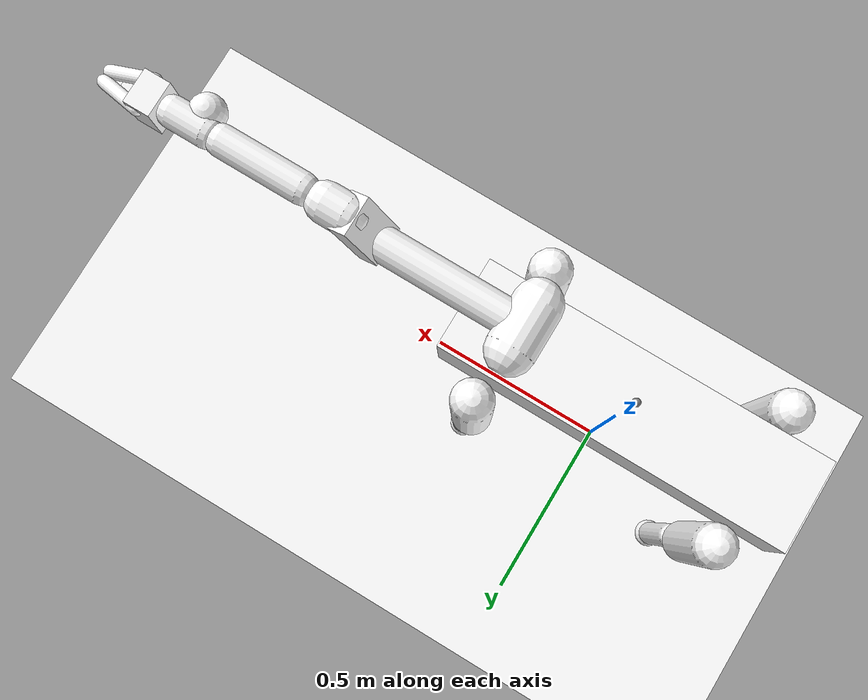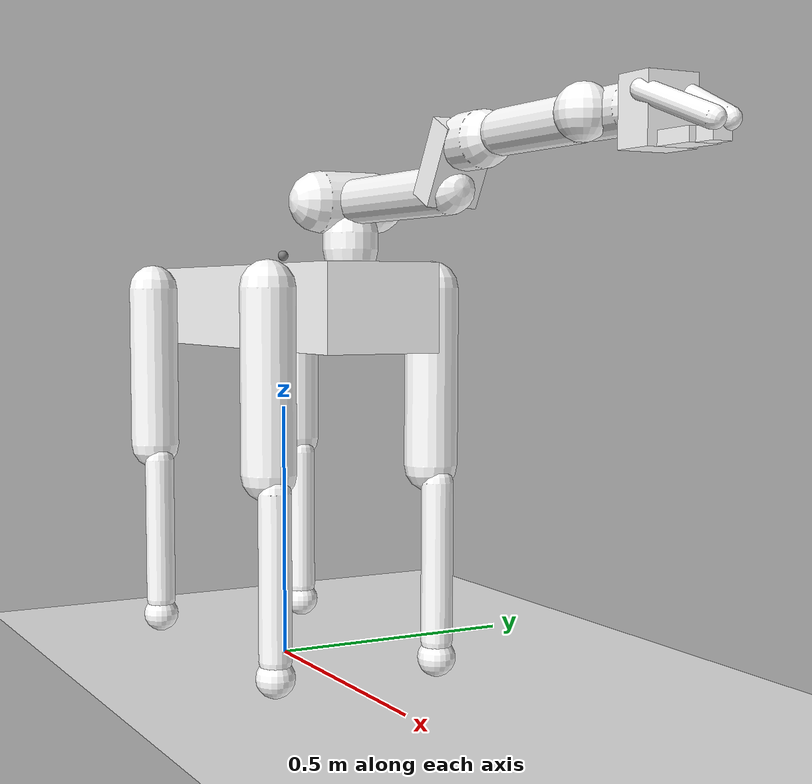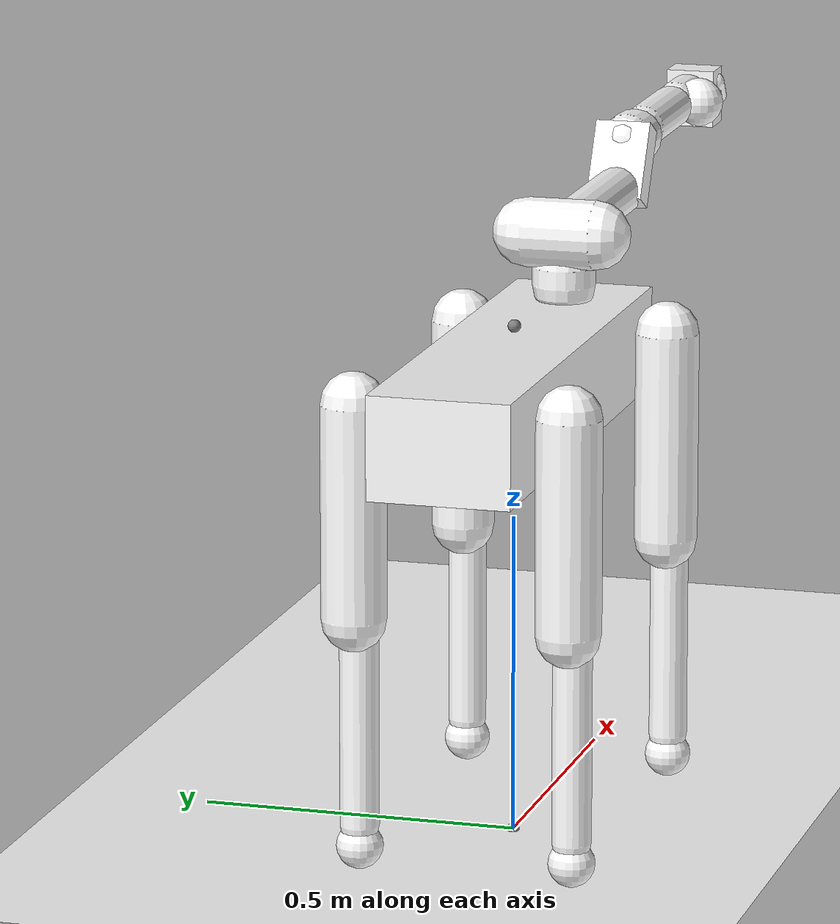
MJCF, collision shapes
<mujoco model="spot_fast">
<!-- Copyright (c) 2024 Boston Dynamics AI Institute LLC. All rights reserved. -->
  <include file="default.xml" />
  <include file="assets.xml" />

  <worldbody>
    <light directional="true" diffuse=".4 .4 .4" specular="0.1 0.1 0.1" pos="0 0 5" dir="0 0 -1" castshadow="false"/>
    <light directional="true" diffuse=".6 .6 .6" specular="0.2 0.2 0.2" pos="0 0 4" dir="0 0 -1"/>

    <geom name="ground" type="plane" size="10 10 0.01" class="collision" priority="5" friction="0.7" material="blue_grid"/>

    <body name="body" pos="0 0 0.7">
      <include file="body.xml" />
      <include file="legs.xml" />
      <include file="arm.xml" />
    </body>
    <site name="site_object" pos="0 0 0" size="0.01"/>
  </worldbody>

  <include file="actuator.xml" />
  <include file="sensor.xml" />
  <include file="contact.xml" />
</mujoco>

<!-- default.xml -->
<mujoco model="spot_default">
<!-- Copyright (c) 2023 Boston Dynamics AI Institute LLC. All rights reserved. -->

  <compiler angle="radian" assetdir="../../meshes/" autolimits="true"/>

  <option timestep="0.01" solver="Newton" integrator="implicitfast" density="1">
    <!-- iterations="5" ls_iterations="10" -->
  </option>

  <default>
    <default class="visual">
      <geom type="mesh" contype="0" conaffinity="0" group="2"/>
    </default>
    <default class="collision">
      <geom group="3" friction="0.15" priority="4" rgba="1 1 1 1" material="semi_transparent">
      </geom>
    </default>

    <!-- The arm damping is higher than the damping gains in spot-sim, because actual joint damping is unknown -->
    <default class="arm">
      <default class="arm_sh0">
        <joint frictionloss="0.5" damping="0.25" armature="0.17953760" range="-2.61799387799149441136 3.14159265358979311599"/>
        <position kp="120" kv="2.0" ctrlrange="-2.61799387799149441136 3.14159265358979311599" forcerange="-90.9 90.9"/>
      </default>
      <default class="arm_sh1">
        <joint frictionloss="0.5" damping="0.25" armature="0.71815040" range="-3.14159265358979311599 0.52359877559829881565"/>
        <position kp="120" kv="2.0" ctrlrange="-3.14159265358979311599 0.52359877559829881565" forcerange="-181.8 181.8"/>
      </default>
      <default class="arm_el0">
        <joint frictionloss="0.5" damping="0.25" armature="0.17953760" range="0 3.14159265358979311599"/>
        <position kp="120" kv="2.0" ctrlrange="0 3.14159265358979311599" forcerange="-90.9 90.9"/>
      </default>
      <default class="arm_el1">
        <joint frictionloss="0.5" damping="0.25" armature="0.05477937"  range="-2.79252680319092716487 2.79252680319092716487"/>
        <position kp="120" kv="2.0" ctrlrange="-2.79252680319092716487 2.79252680319092716487" forcerange="-30.3 30.3"/>
      </default>
      <default class="arm_wr0">
        <joint frictionloss="0.5" damping="0.25" armature="0.05477937" range="-1.83259571459404613236 1.83259571459404613236"/>
        <position kp="120" kv="2.0" ctrlrange="-1.83259571459404613236 1.83259571459404613236" forcerange="-30.3 30.3"/>
      </default>
      <default class="arm_wr1">
        <joint frictionloss="0.5" damping="0.25" armature="0.07997584" range="-2.87979326579064354163 2.87979326579064354163"/>
        <position kp="120" kv="2.0" ctrlrange="-2.87979326579064354163 2.87979326579064354163" forcerange="-30.3 30.3"/>
      </default>
      <default class="arm_f1x">
        <joint frictionloss="0.5" damping="0.25" armature="0.01717273" range="-1.57 0"/>
        <position kp="16.0" kv="0.32" ctrlrange="-1.57 0" forcerange="-15.32 15.32"/>
      </default>
    </default>

    <!-- TODO find correct value for actuators -->
    <default class="leg">
      <default class="hip_x">
        <joint frictionloss="0.5" damping="0.25" armature="0.0403155" range="-0.785398 0.785398"/>
        <position kp="60" kv="1.5" ctrlrange="-0.785398 0.785398" forcerange="-45 45"/>
      </default>
      <default class="hip_y">
        <joint  frictionloss="0.5" damping="0.25" armature="0.0403155" range="-0.898845 2.29511"/>
        <position kp="60" kv="1.5" ctrlrange="-0.898845 2.29511" forcerange="-45 45"/>
      </default>
      <default class="knee">
        <joint frictionloss="0.5" damping="0.25" armature="0.073125" range="-2.7929 -0.2471"/>
        <position kp="60" kv="1.5" ctrlrange="-2.7929 -0.2471" forcerange="-115 115"/>
      </default>
    </default>

  </default>
</mujoco>

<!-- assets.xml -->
<mujoco model="spot_assets">
<!-- Copyright (c) 2023 Boston Dynamics AI Institute LLC. All rights reserved. -->
  <asset>
    <texture name="blue_grid" type="2d" builtin="checker" rgb1="0.2 0.3 0.4" rgb2="0.1 0.2 0.3" width="300" height="300" mark="edge" markrgb="0.8 0.8 0.8"/>
    <material name="blue_grid" texture="blue_grid" texrepeat="5 5" texuniform="true" reflectance=".2"/>
    <texture name="bdai_texture" type="2d" file="spot/textures/bdaii_spot_wrap.png"/>
    <material name="bdai" texture="bdai_texture" specular="1" shininess="11"/>
    <texture name="chess_texture" type="2d" builtin="checker" width="1024" height="1024" rgb1="1.0 0.27 0.1" rgb2="1.0 0.84 0.0"/>
    <material name="chess_material" texture="chess_texture"/>

    <material name="black" rgba="0.2 0.2 0.2 1" roughness="0.1" metallic="0.3"/>
    <material name="yellow" rgba="1 0.8 0.03 1" roughness="0.1" metallic="0.3"/>
    <material name="semi_transparent" rgba="1 1 1 0.75" metallic="0.0" roughness="1.0"/>
    <material name="object" rgba="0.5 0.5 0.5 1" roughness="0.5"/>

    <mesh name="body_0_visual" file="spot/meshes/base/visual/body_0.obj"/>
    <mesh name="body_1_visual" file="spot/meshes/base/visual/body_1.obj"/>

    <mesh name="front_left_hip_visual" file="spot/meshes/base/visual/front_left_hip.obj"/>
    <mesh name="front_left_lower_leg_visual" file="spot/meshes/base/visual/front_left_lower_leg.obj"/>
    <mesh name="front_left_upper_leg_0_visual" file="spot/meshes/base/visual/front_left_upper_leg_0.obj"/>
    <mesh name="front_left_upper_leg_1_visual" file="spot/meshes/base/visual/front_left_upper_leg_1.obj"/>

    <mesh name="front_right_hip_visual" file="spot/meshes/base/visual/front_right_hip.obj"/>
    <mesh name="front_right_lower_leg_visual" file="spot/meshes/base/visual/front_right_lower_leg.obj"/>
    <mesh name="front_right_upper_leg_0_visual" file="spot/meshes/base/visual/front_right_upper_leg_0.obj"/>
    <mesh name="front_right_upper_leg_1_visual" file="spot/meshes/base/visual/front_right_upper_leg_1.obj"/>

    <mesh name="rear_left_hip_visual" file="spot/meshes/base/visual/rear_left_hip.obj"/>
    <mesh name="rear_left_lower_leg_visual" file="spot/meshes/base/visual/rear_left_lower_leg.obj"/>
    <mesh name="rear_left_upper_leg_0_visual" file="spot/meshes/base/visual/rear_left_upper_leg_0.obj"/>
    <mesh name="rear_left_upper_leg_1_visual" file="spot/meshes/base/visual/rear_left_upper_leg_1.obj"/>

    <mesh name="rear_right_hip_visual" file="spot/meshes/base/visual/rear_right_hip.obj"/>
    <mesh name="rear_right_lower_leg_visual" file="spot/meshes/base/visual/rear_right_lower_leg.obj"/>
    <mesh name="rear_right_upper_leg_0_visual" file="spot/meshes/base/visual/rear_right_upper_leg_0.obj"/>
    <mesh name="rear_right_upper_leg_1_visual" file="spot/meshes/base/visual/rear_right_upper_leg_1.obj"/>

    <mesh name="arm_link_sh0_visual" file="spot/meshes/arm/visual/arm_link_sh0.obj"/>
    <mesh name="arm_link_sh1_0_visual" file="spot/meshes/arm/visual/arm_link_sh1_0.obj"/>
    <mesh name="arm_link_sh1_1_visual" file="spot/meshes/arm/visual/arm_link_sh1_1.obj"/>
    <mesh name="arm_link_el0_visual" file="spot/meshes/arm/visual/arm_link_el0.obj"/>
    <mesh name="arm_link_el1_0_visual" file="spot/meshes/arm/visual/arm_link_el1_0.obj"/>
    <mesh name="arm_link_el1_1_visual" file="spot/meshes/arm/visual/arm_link_el1_1.obj"/>
    <mesh name="arm_link_wr0_0_visual" file="spot/meshes/arm/visual/arm_link_wr0_0.obj"/>
    <mesh name="arm_link_wr0_1_visual" file="spot/meshes/arm/visual/arm_link_wr0_1.obj"/>
    <mesh name="arm_link_wr1_0_visual" file="spot/meshes/arm/visual/arm_link_wr1_0.obj"/>
    <mesh name="arm_link_wr1_1_visual" file="spot/meshes/arm/visual/arm_link_wr1_1.obj"/>
    <mesh name="arm_link_fngr_0_visual" file="spot/meshes/gripper/visual/arm_link_fngr_0.obj"/>
    <mesh name="arm_link_fngr_1_visual" file="spot/meshes/gripper/visual/arm_link_fngr_1.obj"/>
  </asset>
</mujoco>

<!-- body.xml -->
<mujoco model="spot_body">
<!-- Copyright (c) 2025 Boston Dynamics AI Institute LLC. All rights reserved. -->
    <joint name="base" type="free"/>
    <inertial mass="16.70765207" pos="0 0 -0.00496172" fullinertia="0.081543792 0.549231154 0.569454373 0 0 0"/>
    <geom name="body_0_visual" class="visual" mesh="body_0_visual" material="black"/>
    <geom name="body_1_visual" class="visual" mesh="body_1_visual" material="yellow"/>
    <geom name="body_collision" class="collision" type="box" size="0.42 0.11 0.08"/>
    <site name="site_body" pos="0 0 0.1" size="0.01"/>
</mujoco>

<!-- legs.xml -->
<mujoco model="spot_legs">
<!-- Copyright (c) 2023 Boston Dynamics AI Institute LLC. All rights reserved. -->
    <body name="front_left_hip" pos="0.29785 0.055 0">
        <inertial pos="-0.01586739 0.00855842 0.00000903" mass="1.13688339" fullinertia="0.00122166 0.00158957 0.00172903 -0.00017754 0.00000043 -0.00000049"/>
        <joint name="fl_hx" class="hip_x" pos="0 0 0" axis="1 0 0" range="-0.785398 0.785398"/>
        <geom name="front_left_hip_visual" class="visual" mesh="front_left_hip_visual" material="black"/>
        <body name="front_left_upper_leg" pos="0 0.110945 0">
            <inertial pos="0.00214442 -0.01110184 -0.07881204" mass="2.25620359" fullinertia="0.02692501 0.02583907 0.00318737 -0.00008782 0.00054873 0.00207146"/>
            <joint name="fl_hy" class="hip_y" pos="0 0 0" axis="0 1 0" range="-0.898845 2.295108"/>
            <geom name="front_left_upper_leg_0_visual" class="visual" mesh="front_left_upper_leg_0_visual" material="yellow"/>
            <geom name="front_left_upper_leg_1_visual" class="visual" mesh="front_left_upper_leg_1_visual" material="black"/>
            <geom name="front_left_upper_leg_collision" class="collision" type="capsule" size="0.05 0.165" pos="0 0 -0.13"/>
            <body name="front_left_lower_leg" pos="0.025 0 -0.3205">
                <inertial pos="0.00597360 0.0 -0.17466427" mass="0.33" fullinertia="0.00701356 0.00709946 0.00014529 0 0.00006600 0"/>
                <joint name="fl_kn" class="knee" pos="0 0 0" axis="0 1 0" range="-2.7929 -0.2471"/>
                <geom name="front_left_lower_leg_visual" class="visual" mesh="front_left_lower_leg_visual" material="black"/>
                <geom name="front_left_lower_leg_collision" class="collision" type="capsule" size="0.03 0.15" pos="0 0 -0.155"/>
                <geom name="front_left_foot_collision" class="collision" type="sphere" size="0.036" pos="0 0 -0.3365"/>
                <site name="site_front_left" pos="0 0 -0.3365" size="0.01"/>
            </body>
        </body>
    </body>

    <body name="front_right_hip" pos="0.29785 -0.055 0">
        <inertial pos="-0.01586739 -0.00855842 0.00000903" mass="1.13688339" fullinertia="0.00122166 0.00158957 0.00172903 0.00017754 0.00000043 0.00000049"/>
        <joint name="fr_hx" class="hip_x" pos="0 0 0" axis="1 0 0" range="-0.785398 0.785398"/>
        <geom name="front_right_hip_visual" class="visual" mesh="front_right_hip_visual" material="black"/>
        <body name="front_right_upper_leg" pos="0 -0.110945 0">
            <inertial pos="0.00214442 0.01110184 -0.07881204" mass="2.25620359" fullinertia="0.02692501 0.02583907 0.00318737 0.00008782 0.00054873 -0.00207146"/>
            <joint name="fr_hy" class="hip_y" pos="0 0 0" axis="0 1 0" range="-0.898845 2.295108"/>
            <geom name="front_right_upper_leg_0_visual" class="visual" mesh="front_right_upper_leg_0_visual" material="yellow"/>
            <geom name="front_right_upper_leg_1_visual" class="visual" mesh="front_right_upper_leg_1_visual" material="black"/>
            <geom name="front_right_upper_leg_collision" class="collision" type="capsule" size="0.05 0.165" pos="0 0 -0.13"/>
            <body name="front_right_lower_leg" pos="0.025 0 -0.3205">
                <inertial pos="0.00597360 0.0 -0.17466427" mass="0.33" fullinertia="0.00701356 0.00709946 0.00014529 0 0.00006600 0"/>
                <joint name="fr_kn" class="knee" pos="0 0 0" axis="0 1 0" range="-2.7929 -0.2471"/>
                <geom name="front_right_lower_leg_visual" class="visual" mesh="front_right_lower_leg_visual" material="black"/>
                <geom name="front_right_lower_leg_collision" class="collision" type="capsule" size="0.03 0.15" pos="0 0 -0.155"/>
                <geom name="front_right_foot_collision" class="collision" type="sphere" size="0.036" pos="0 0 -0.3365"/>
                <site name="site_front_right" pos="0 0 -0.3365" size="0.01"/>
            </body>
        </body>
    </body>

    <body name="rear_left_hip" pos="-0.29785 0.055 0">
        <inertial pos="0.01586739 0.00855842 0.00000903" mass="1.13688339" fullinertia="0.00122166 0.00158957 0.00172903 0.00017754 -0.00000043 -0.00000049"/>
        <joint name="hl_hx" class="hip_x" pos="0 0 0" axis="1 0 0" range="-0.785398 0.785398"/>
        <geom name="rear_left_hip_visual" class="visual" mesh="rear_left_hip_visual" material="black"/>
        <body name="rear_left_upper_leg" pos="0 0.110945 0">
            <inertial pos="0.00214442 -0.01110184 -0.07881204" mass="2.25620359" fullinertia="0.02692501 0.02583907 0.00318737 -0.00008782 0.00054873 0.00207146"/>
            <joint name="hl_hy" class="hip_y" pos="0 0 0" axis="0 1 0" range="-0.898845 2.295108"/>
            <geom name="rear_left_upper_leg_0_visual" class="visual" mesh="rear_left_upper_leg_0_visual" material="yellow"/>
            <geom name="rear_left_upper_leg_1_visual" class="visual" mesh="rear_left_upper_leg_1_visual" material="black"/>
            <geom name="rear_left_upper_leg_collision" class="collision" type="capsule" size="0.05 0.165" pos="0 0 -0.13"/>
            <body name="rear_left_lower_leg" pos="0.025 0 -0.3205">
                <inertial pos="0.00597360 0.0 -0.17466427" mass="0.33" fullinertia="0.00701356 0.00709946 0.00014529 0 0.00006600 0"/>
                <joint name="hl_kn" class="knee" pos="0 0 0" axis="0 1 0" range="-2.7929 -0.2471"/>
                <geom name="rear_left_lower_leg_visual" class="visual" mesh="rear_left_lower_leg_visual" material="black"/>
                <geom name="rear_left_lower_leg_collision" class="collision" type="capsule" size="0.03 0.15" pos="0 0 -0.155"/>
                <geom name="rear_left_foot_collision" class="collision" type="sphere" size="0.036" pos="0 0 -0.3365"/>
                <site name="site_rear_left" pos="0 0 -0.3365" size="0.01"/>
            </body>
        </body>
    </body>

    <body name="rear_right_hip" pos="-0.29785 -0.055 0">
        <inertial pos="0.01586739 -0.00855842 0.00000903" mass="1.13688339" fullinertia="0.00122166 0.00158957 0.00172903 -0.00017754 -0.00000043 0.00000049"/>
        <joint name="hr_hx" class="hip_x" pos="0 0 0" axis="1 0 0" range="-0.785398 0.785398"/>
        <geom name="rear_right_hip_visual" class="visual" mesh="rear_right_hip_visual" material="black"/>
        <body name="rear_right_upper_leg" pos="0 -0.110945 0">
            <inertial pos="0.00214442 0.01110184 -0.07881204" mass="2.25620359" fullinertia="0.02692501 0.02583907 0.00318737 0.00008782 0.00054873 -0.00207146"/>
            <joint name="hr_hy" class="hip_y" pos="0 0 0" axis="0 1 0" range="-0.898845 2.295108"/>
            <geom name="rear_right_upper_leg_0_visual" class="visual" mesh="rear_right_upper_leg_0_visual" material="yellow"/>
            <geom name="rear_right_upper_leg_1_visual" class="visual" mesh="rear_right_upper_leg_1_visual" material="black"/>
            <geom name="rear_right_upper_leg_collision" class="collision" type="capsule" size="0.05 0.165" pos="0 0 -0.13"/>
            <body name="rear_right_lower_leg" pos="0.025 0 -0.3205">
                <inertial pos="0.00597360 0.0 -0.17466427" mass="0.33" fullinertia="0.00701356 0.00709946 0.00014529 0 0.00006600 0"/>
                <joint name="hr_kn" class="knee" pos="0 0 0" axis="0 1 0" range="-2.7929 -0.2471"/>
                <geom name="rear_right_lower_leg_visual" class="visual" mesh="rear_right_lower_leg_visual" material="black"/>
                <geom name="rear_right_lower_leg_collision" class="collision" type="capsule" size="0.03 0.15" pos="0 0 -0.155"/>
                <geom name="rear_right_foot_collision" class="collision" type="sphere" size="0.036" pos="0 0 -0.3365"/>
                <site name="site_rear_right" pos="0 0 -0.3365" size="0.01"/>
            </body>
        </body>
    </body>
</mujoco>

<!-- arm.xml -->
<mujoco model="spot_arm">
<!-- Copyright (c) 2023 Boston Dynamics AI Institute LLC. All rights reserved. -->
<!-- fullinertia="M(1,1), M(2,2), M(3,3), M(1,2), M(1,3), M(2,3)" -->
  <body name="arm_link_sh0" pos="0.292 0 0.188" gravcomp="0">
    <joint name="arm_sh0" class="arm_sh0" type="hinge" axis="0 0 1" pos="0 0 0"/>
    <inertial mass="1.904699" fullinertia="0.008896 0.004922 0.0073030 0.000005 -0.000193 0.000033" pos="-0.008399 0.000272 -0.024603"/>
    <geom name="arm_link_sh0_visual" class="visual" mesh="arm_link_sh0_visual" material="black"/>
    <geom name="arm_link_sh0_base_collision" class="collision" type="capsule" size="0.05 0.015" pos="0 0 -0.07"/>
    <geom name="arm_link_sh0_motor_collision" class="collision" type="capsule" size="0.055 0.055" pos="-0.015 0 0" euler="1.57079632679 0 0"/>
    <site name="site_arm_link_sh0" pos="0 0 0" size="0.01"/>

    <body name="arm_link_sh1" pos="0 0 0" gravcomp="0">
      <joint name="arm_sh1" class="arm_sh1" type="hinge" axis="0 1 0" pos="0 0 0"/>
      <inertial mass="1.85701942" fullinertia="0.00261526 0.02703868 0.02819929 -0.00040406 0.00010019 0.00000547" pos="0.08084909 -0.00167243 0.00045644" />
      <geom name="arm_link_sh1_0_visual" class="visual" mesh="arm_link_sh1_0_visual" material="yellow"/>
      <geom name="arm_link_sh1_1_visual" class="visual" mesh="arm_link_sh1_1_visual" material="black"/>
      <geom name="arm_link_sh1_collision" class="collision" type="capsule" size="0.04 0.175" pos="0.17 0 0" euler="0 1.57079632679 0"/>
      <site name="site_arm_link_sh1" pos="0 0 0" size="0.01"/>

      <body name="arm_link_el0" pos="0.3385 0 0" gravcomp="0">
        <joint name="arm_el0" class="arm_el0" type="hinge" axis="0 1 0" pos="0 0 0"/>
        <inertial mass="0.94831958" fullinertia="0.00175909 0.00269233 0.00202854 0.00006087  0.00092380 0.00005217" pos="0.04476621 -0.00271130 0.04991363" />
        <geom name="arm_link_el0_visual" class="visual" mesh="arm_link_el0_visual" material="black"/>
        <geom name="arm_link_el0_joint_collision" class="collision" type="box" size="0.025 0.045 0.065" pos="0.02 0 0.04" euler= "0 0.5 0"/>
        <geom name="arm_link_el0_body_collision" class="collision" type="capsule" size="0.045 0.025" pos="0.08 0 0.07" euler="0 1.57079632679 0"/>
        <site name="site_arm_link_el0" pos="0 0 0" size="0.01"/>

        <body name="arm_link_el1" pos="0.4033 0 0.075" gravcomp="0">
          <joint name="arm_el1" class="arm_el1" type="hinge" axis="1 0 0" pos="0 0 0"/>
          <inertial mass="1.01754820" fullinertia="0.00117710 0.01649389 0.01689901 -0.00260549 0.00000156 -0.00000287" pos="-0.16867073 -0.01616121 0.00001149" />
          <geom name="arm_link_el1_0_visual" class="visual" mesh="arm_link_el1_0_visual" material="yellow"/>
          <geom name="arm_link_el1_1_visual" class="visual" mesh="arm_link_el1_1_visual" material="black"/>
          <geom name="arm_link_el1_main_collision" type="capsule" class="collision" size="0.035 0.095" pos="-0.15 0 0" euler="0 1.57079632679 0"/>
          <geom name="arm_link_el1_lip_collision" type="sphere" class="collision" size="0.04" pos="0 -0.035 0"/>
          <site name="site_arm_link_el1" pos="0 0 0" size="0.01"/>

          <body name="arm_link_wr0" pos="0 0 0" gravcomp="0">
            <joint name="arm_wr0" class="arm_wr0" type="hinge" axis="0 1 0" pos="0 0 0"/>
            <inertial mass="0.58263740" fullinertia="0.00046738 0.00044968 0.00053616 0.00006957 0.00000040 0.00000016" pos="0.00952465 -0.01144406 0.00000186" />
            <geom name="arm_link_wr0_0_visual" class="visual" mesh="arm_link_wr0_0_visual" material="yellow"/>
            <geom name="arm_link_wr0_1_visual" class="visual" mesh="arm_link_wr0_1_visual" material="black"/>
            <geom name="arm_link_wr0_collision" class="collision" type="capsule" size="0.035 0.04" pos="0.02 0 0" euler="0 1.57079632679 0"/>
            <site name="site_arm_link_wr0" pos="0 0 0" size="0.01"/>

            <body name="arm_link_wr1" pos="0 0 0" gravcomp="0">
              <joint name="arm_wr1" class="arm_wr1" type="hinge" axis="1 0 0" pos="0 0 0"/>
              <inertial mass="0.93335298" fullinertia="0.00098836 0.00197018 0.00165791 -0.00000126 -0.00036919 -0.00000074" pos="0.09751283 0.00009265 -0.01120523" />
              <geom name="arm_link_wr1_0_visual" class="visual" mesh="arm_link_wr1_0_visual" material="yellow"/>
              <geom name="arm_link_wr1_1_visual" class="visual" mesh="arm_link_wr1_1_visual" material="black"/>
              <geom name="arm_link_wr1_collision" class="collision" type="box" size="0.03 0.04 0.0475" pos="0.11 0 -0.01" />
              <geom name="bottom_jaw_collision" class="collision" type="box" size="0.03 0.025 0.01" pos="0.17 0 -0.0475" />
              <geom name="front_jaw_collision" class="collision" type="box" size="0.016 0.015 0.01" pos="0.215 0 -0.0475" />
              <geom name="front_jaw_tooth_collision" class="collision" type="box" size="0.005 0.01 0.005" pos="0.224 0 -0.039" euler="0 1 0"/>
              <site name="site_arm_link_wr1" pos="0 0 0" size="0.01"/>

              <body name="arm_link_fngr" pos="0.11745 0.0 0.014820" gravcomp="0">
                <joint name="arm_f1x" class="arm_f1x" type="hinge" axis="0 1 0" pos="0 0 0"/>
                <inertial mass="0.22383315" fullinertia="0.00025226 0.00048453 0.00059145 -0.00000536 -0.00015067 0.00000184" pos="0.03565178 0.00067200 -0.01227516" />
                <geom name="arm_link_fngr_0_visual" class="visual" mesh="arm_link_fngr_0_visual" material="yellow"/>
                <geom name="arm_link_fngr_1_visual" class="visual" mesh="arm_link_fngr_1_visual" material="black"/>
                <geom name="left_jaw_collision" type="capsule" class="collision" size="0.015 0.06" pos="0.057 0.023 -0.023" euler="-0.45 2.0 0"/>
                <geom name="right_jaw_collision" type="capsule" class="collision" size="0.015 0.06" pos="0.057 -0.023 -0.023" euler="0.45 2.0 0"/>
                <site name="site_arm_link_fngr" pos="0 0 0" size="0.01"/>
              </body>
            </body>
          </body>
        </body>
      </body>
    </body>
  </body>
</mujoco>

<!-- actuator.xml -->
<mujoco model="actuator">
<!-- Copyright (c) 2023 Boston Dynamics AI Institute LLC. All rights reserved. -->
  <actuator>
    <position name="act_fl1" joint="fl_hx" class="hip_x"/>
    <position name="act_fl2" joint="fl_hy" class="hip_y"/>
    <position name="act_fl3" joint="fl_kn" class="knee"/>
    <position name="act_fr1" joint="fr_hx" class="hip_x"/>
    <position name="act_fr2" joint="fr_hy" class="hip_y"/>
    <position name="act_fr3" joint="fr_kn" class="knee"/>
    <position name="act_rl1" joint="hl_hx" class="hip_x"/>
    <position name="act_rl2" joint="hl_hy" class="hip_y"/>
    <position name="act_rl3" joint="hl_kn" class="knee"/>
    <position name="act_rr1" joint="hr_hx" class="hip_x"/>
    <position name="act_rr2" joint="hr_hy" class="hip_y"/>
    <position name="act_rr3" joint="hr_kn" class="knee"/>

    <position name="act_0" joint="arm_sh0" class="arm_sh0"/>
    <position name="act_1" joint="arm_sh1" class="arm_sh1"/>
    <position name="act_2" joint="arm_el0" class="arm_el0"/>
    <position name="act_3" joint="arm_el1" class="arm_el1"/>
    <position name="act_4" joint="arm_wr0" class="arm_wr0"/>
    <position name="act_5" joint="arm_wr1" class="arm_wr1"/>
    <position name="act_6" joint="arm_f1x" class="arm_f1x"/>
  </actuator>
</mujoco>

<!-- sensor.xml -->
<mujoco model="sensor">
<!-- Copyright (c) 2023 Boston Dynamics AI Institute LLC. All rights reserved. -->
<!-- NOTE: These sensors are not included in the model if using dexterity/scene_generation. -->
<!-- Additional sensors should be added to dexterity/sene_generation/__init__.py -->
  <sensor>
    <framepos name="sensor_body" objtype="site" objname="site_body" reftype="site" refname="site_object" />
    <framexaxis name="body_x_axis" objtype="site" objname="site_body"/>
    <frameyaxis name="object_y_axis" objtype="site" objname="site_object"/>
    <framezaxis name="object_z_axis" objtype="site" objname="site_object"/>
    <framepos name="trace_fngr_site" objtype="site" objname="site_arm_link_fngr"/>
    <framepos name="fl_pos" objtype="site" objname="site_front_left"/>
    <framepos name="fr_pos" objtype="site" objname="site_front_right"/>
    <framepos name="hl_pos" objtype="site" objname="site_rear_left"/>
    <framepos name="hr_pos" objtype="site" objname="site_rear_right"/>
    <framepos name="sensor_arm_link_sh0" objtype="site" objname="site_arm_link_sh0" reftype="site" refname="site_object" />
    <framepos name="sensor_arm_link_sh1" objtype="site" objname="site_arm_link_sh1" reftype="site" refname="site_object" />
    <framepos name="sensor_arm_link_el0" objtype="site" objname="site_arm_link_el0" reftype="site" refname="site_object" />
    <framepos name="sensor_arm_link_el1" objtype="site" objname="site_arm_link_el1" reftype="site" refname="site_object" />
    <framepos name="sensor_arm_link_wr0" objtype="site" objname="site_arm_link_wr0" reftype="site" refname="site_object" />
    <framepos name="sensor_arm_link_wr1" objtype="site" objname="site_arm_link_wr1" reftype="site" refname="site_object" />
    <framepos name="sensor_arm_link_fngr" objtype="site" objname="site_arm_link_fngr" reftype="site" refname="site_object" />
  </sensor>
</mujoco>

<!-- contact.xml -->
<mujoco model="spot_contact">
<!-- Copyright (c) 2024 Boston Dynamics AI Institute LLC. All rights reserved. -->
  <contact>
    <exclude body1="arm_link_sh0" body2="arm_link_el1"/>
    <exclude body1="arm_link_sh1" body2="arm_link_el0"/>
    <exclude body1="arm_link_sh1" body2="arm_link_el1"/>
    <exclude body1="body" body2="front_left_upper_leg"/>
    <exclude body1="body" body2="front_right_upper_leg"/>
    <exclude body1="body" body2="rear_left_upper_leg"/>
    <exclude body1="body" body2="rear_right_upper_leg"/>
    <exclude body1="arm_link_sh0" body2="front_left_upper_leg"/>
    <exclude body1="arm_link_sh0" body2="front_right_upper_leg"/>
    <exclude body1="arm_link_sh0" body2="rear_left_upper_leg"/>
    <exclude body1="arm_link_sh0" body2="rear_right_upper_leg"/>
  </contact>
</mujoco>
